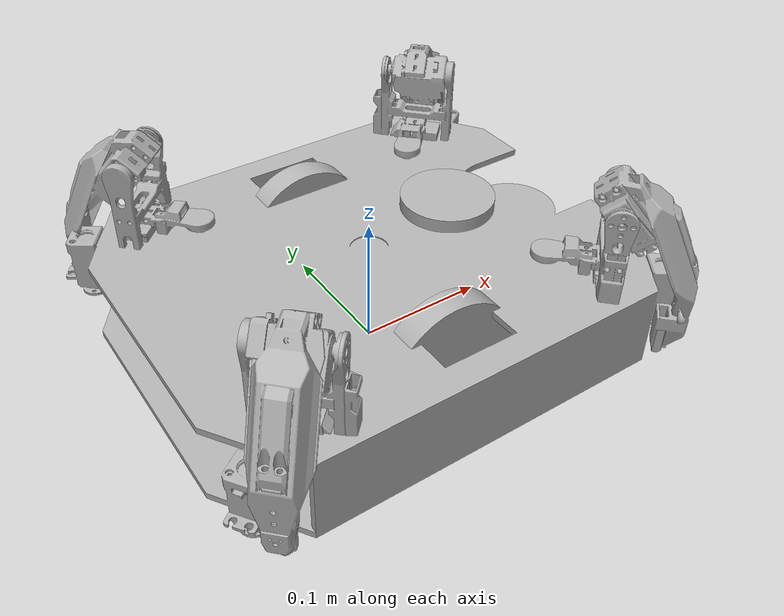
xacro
<?xml version="1.0"?>
<robot xmlns:xacro="http://www.ros.org/wiki/xacro"  name="mp_bot">

    <xacro:arg name="sim_mode" default="true"/>

    <xacro:include filename="mp_bot_links.xacro" />
    <xacro:include filename="mp_bot_joints.xacro" />
    <xacro:include filename="mp_bot.gazebo" />

    <xacro:include filename="ros2_control.xacro"/>

</robot>

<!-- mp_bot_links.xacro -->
<robot name="mp_bot" xmlns:xacro="http://www.ros.org/wiki/xacro">

<xacro:include filename="$(find mp_bot_description)/urdf/materials.xacro" />
<xacro:include filename="consts.xacro" />
<xacro:include filename="inertial_macros.xacro"/>

<link name="base_footprint">
</link>

<link name="base_link">
  <inertial>
    <origin xyz="0.00474561993284678 0.000451302971160743 0.05713204675158248" rpy="0 0 0"/>
    <mass value="1.3993336393164946"/>
    <inertia ixx="0.004167" iyy="0.008114" izz="0.011093" ixy="-2.3e-05" iyz="-1e-06" ixz="-0.000122"/>
  </inertial>
  <visual>
    <origin xyz="0 0 0" rpy="0 0 0"/>
    <geometry>
      <mesh filename="file://$(find mp_bot_description)/meshes/base_link.stl" scale="0.001 0.001 0.001"/>
    </geometry>
    <material name="silver"/>
  </visual>
  <collision>
    <origin xyz="0 0 0" rpy="0 0 0"/>
    <geometry>
      <mesh filename="file://$(find mp_bot_description)/meshes/base_link.stl" scale="0.001 0.001 0.001"/>
    </geometry>
  </collision>
</link>

<link name="lidar_1">
  <inertial>
    <origin xyz="-3.502526686322005e-07 -7.394349676374638e-08 0.004999991334536519" rpy="0 0 0"/>
    <mass value="0.036637253526164155"/>
    <inertia ixx="1.2e-05" iyy="1.2e-05" izz="2.2e-05" ixy="-0.0" iyz="-0.0" ixz="0.0"/>
  </inertial>
  <visual>
    <origin xyz="-0.070405 -0.001718 -0.091239" rpy="0 0 0"/>
    <geometry>
      <mesh filename="file://$(find mp_bot_description)/meshes/lidar_1_1.stl" scale="0.001 0.001 0.001"/>
    </geometry>
    <material name="silver"/>
  </visual>
  <collision>
    <origin xyz="-0.070405 -0.001718 -0.091239" rpy="0 0 0"/>
    <geometry>
      <mesh filename="file://$(find mp_bot_description)/meshes/lidar_1_1.stl" scale="0.001 0.001 0.001"/>
    </geometry>
  </collision>
</link>

<link name="caster_back_1">
  <inertial>
    <origin xyz="4.183074855113045e-07 4.3714413351642447e-07 -0.011527777777777783" rpy="0 0 0"/>
    <mass value="0.12723450247038673"/>
    <inertia ixx="1.3e-05" iyy="1.3e-05" izz="1.3e-05" ixy="-0.0" iyz="0.0" ixz="0.0"/>
  </inertial>
  <visual>
    <origin xyz="0.085732 -0.00046 -0.028" rpy="0 0 0"/>
    <geometry>
      <mesh filename="file://$(find mp_bot_description)/meshes/caster_back_1.stl" scale="0.001 0.001 0.001"/>
    </geometry>
    <material name="silver"/>
  </visual>
  <collision>
    <origin xyz="0.085732 -0.00046 -0.028" rpy="0 0 0"/>
    <geometry>
      <mesh filename="file://$(find mp_bot_description)/meshes/caster_back_1.stl" scale="0.001 0.001 0.001"/>
    </geometry>
  </collision>
</link>

<link name="caster_front_1">
  <inertial>
    <origin xyz="-4.183074797936559e-07 4.371441395560269e-07 -0.011527777777780416" rpy="0 0 0"/>
    <mass value="0.12723450247038653"/>
    <inertia ixx="1.3e-05" iyy="1.3e-05" izz="1.3e-05" ixy="-0.0" iyz="-0.0" ixz="0.0"/>
  </inertial>
  <visual>
    <origin xyz="-0.085732 -0.00046 -0.028" rpy="0 0 0"/>
    <geometry>
      <mesh filename="file://$(find mp_bot_description)/meshes/caster_front_1.stl" scale="0.001 0.001 0.001"/>
    </geometry>
    <material name="silver"/>
  </visual>
  <collision>
    <origin xyz="-0.085732 -0.00046 -0.028" rpy="0 0 0"/>
    <geometry>
      <mesh filename="file://$(find mp_bot_description)/meshes/caster_front_1.stl" scale="0.001 0.001 0.001"/>
    </geometry>
  </collision>
</link>

<link name="left_wheel_1">
  <inertial>
    <origin xyz="-4.371441352808551e-07 0.009999752881842613 4.3021142204224816e-16" rpy="0 0 0"/>
    <mass value="0.14029912967960512"/>
    <inertia ixx="8.9e-05" iyy="0.000168" izz="8.9e-05" ixy="0.0" iyz="0.0" ixz="0.0"/>
  </inertial>
  <visual>
    <origin xyz="0.00046 -0.08385 -0.049" rpy="0 0 0"/>
    <geometry>
      <mesh filename="file://$(find mp_bot_description)/meshes/left_wheel_1_1.stl" scale="0.001 0.001 0.001"/>
    </geometry>
    <material name="silver"/>
  </visual>
  <collision>
    <origin xyz="0.00046 -0.08385 -0.049" rpy="0 0 0"/>
    <geometry>
      <mesh filename="file://$(find mp_bot_description)/meshes/left_wheel_1_1.stl" scale="0.001 0.001 0.001"/>
    </geometry>
  </collision>
</link>

<link name="right_wheel_1">
  <inertial>
    <origin xyz="-4.3714413543096287e-07 -0.009999878593571487 1.5959455978986625e-16" rpy="0 0 0"/>
    <mass value="0.1402991296796053"/>
    <inertia ixx="8.9e-05" iyy="0.000168" izz="8.9e-05" ixy="0.0" iyz="0.0" ixz="0.0"/>
  </inertial>
  <visual>
    <origin xyz="0.00046 0.082929 -0.049" rpy="0 0 0"/>
    <geometry>
      <mesh filename="file://$(find mp_bot_description)/meshes/right_wheel_1_1.stl" scale="0.001 0.001 0.001"/>
    </geometry>
    <material name="silver"/>
  </visual>
  <collision>
    <origin xyz="0.00046 0.082929 -0.049" rpy="0 0 0"/>
    <geometry>
      <mesh filename="file://$(find mp_bot_description)/meshes/right_wheel_1_1.stl" scale="0.001 0.001 0.001"/>
    </geometry>
  </collision>
</link>

<link name="rl_coxa_1">
  <inertial>
    <origin xyz="-0.026996714960131424 0.026268077179343638 0.028198241308351017" rpy="0 0 0"/>
    <mass value="0.04612607101892639"/>
    <inertia ixx="1.9e-05" iyy="1.9e-05" izz="1.4e-05" ixy="2e-06" iyz="1e-06" ixz="-2e-06"/>
  </inertial>
  <visual>
    <origin xyz="0.091978 -0.082887 -0.0409" rpy="0 0 0"/>
    <geometry>
      <mesh filename="file://$(find mp_bot_description)/meshes/rl_coxa_1_1.stl" scale="0.001 0.001 0.001"/>
    </geometry>
    <material name="silver"/>
  </visual>
  <collision>
    <origin xyz="0.091978 -0.082887 -0.0409" rpy="0 0 0"/>
    <geometry>
      <mesh filename="file://$(find mp_bot_description)/meshes/rl_coxa_1_1.stl" scale="0.001 0.001 0.001"/>
    </geometry>
  </collision>
</link>

<link name="rl_femur_1">
  <inertial>
    <origin xyz="-0.018537791249072885 -0.018605177412705676 0.04000428624818345" rpy="0 0 0"/>
    <mass value="0.020845301312193962"/>
    <inertia ixx="2.1e-05" iyy="2.1e-05" izz="1.4e-05" ixy="-6e-06" iyz="0.0" ixz="0.0"/>
  </inertial>
  <visual>
    <origin xyz="0.104487 -0.131882 -0.0594" rpy="0 0 0"/>
    <geometry>
      <mesh filename="file://$(find mp_bot_description)/meshes/rl_femur_1_1.stl" scale="0.001 0.001 0.001"/>
    </geometry>
    <material name="silver"/>
  </visual>
  <collision>
    <origin xyz="0.104487 -0.131882 -0.0594" rpy="0 0 0"/>
    <geometry>
      <mesh filename="file://$(find mp_bot_description)/meshes/rl_femur_1_1.stl" scale="0.001 0.001 0.001"/>
    </geometry>
  </collision>
</link>

<link name="rl_tibia_1">
  <inertial>
    <origin xyz="-0.03231932266314186 -0.004733150335248015 -0.022207890058919558" rpy="0 0 0"/>
    <mass value="0.05880876423892687"/>
    <inertia ixx="7.7e-05" iyy="7.6e-05" izz="3.2e-05" ixy="1e-05" iyz="2.3e-05" ixz="-2.2e-05"/>
  </inertial>
  <visual>
    <origin xyz="0.104486 -0.131883 -0.1394" rpy="0 0 0"/>
    <geometry>
      <mesh filename="file://$(find mp_bot_description)/meshes/rl_tibia_1_1.stl" scale="0.001 0.001 0.001"/>
    </geometry>
    <material name="silver"/>
  </visual>
  <collision>
    <origin xyz="0.104486 -0.131883 -0.1394" rpy="0 0 0"/>
    <geometry>
      <mesh filename="file://$(find mp_bot_description)/meshes/rl_tibia_1_1.stl" scale="0.001 0.001 0.001"/>
    </geometry>
  </collision>
</link>

<link name="rl_sensor_1">
  <inertial>
    <origin xyz="-0.0001512753527032895 0.00014740707198832026 0.005203593667277413" rpy="0 0 0"/>
    <mass value="0.0012341362092424158"/>
    <inertia ixx="0.0" iyy="0.0" izz="0.0" ixy="-0.0" iyz="0.0" ixz="-0.0"/>
  </inertial>
  <visual>
    <origin xyz="0.153315 -0.144225 -0.024368" rpy="0 0 0"/>
    <geometry>
      <mesh filename="file://$(find mp_bot_description)/meshes/rl_sensor_1_1.stl" scale="0.001 0.001 0.001"/>
    </geometry>
    <material name="silver"/>
  </visual>
  <collision>
    <origin xyz="0.153315 -0.144225 -0.024368" rpy="0 0 0"/>
    <geometry>
      <mesh filename="file://$(find mp_bot_description)/meshes/rl_sensor_1_1.stl" scale="0.001 0.001 0.001"/>
    </geometry>
  </collision>
</link>

<link name="rr_coxa_1">
  <inertial>
    <origin xyz="-0.026996715472871163 -0.026268076930194784 0.028198240684364988" rpy="0 0 0"/>
    <mass value="0.04612607279343699"/>
    <inertia ixx="1.9e-05" iyy="1.9e-05" izz="1.4e-05" ixy="-2e-06" iyz="-1e-06" ixz="-2e-06"/>
  </inertial>
  <visual>
    <origin xyz="0.091978 0.082887 -0.0409" rpy="0 0 0"/>
    <geometry>
      <mesh filename="file://$(find mp_bot_description)/meshes/rr_coxa_1_1.stl" scale="0.001 0.001 0.001"/>
    </geometry>
    <material name="silver"/>
  </visual>
  <collision>
    <origin xyz="0.091978 0.082887 -0.0409" rpy="0 0 0"/>
    <geometry>
      <mesh filename="file://$(find mp_bot_description)/meshes/rr_coxa_1_1.stl" scale="0.001 0.001 0.001"/>
    </geometry>
  </collision>
</link>

<link name="rr_femur_1">
  <inertial>
    <origin xyz="-0.018537790161329004 0.018605176192033224 0.04000428711430739" rpy="0 0 0"/>
    <mass value="0.020845299978919977"/>
    <inertia ixx="2.1e-05" iyy="2.1e-05" izz="1.4e-05" ixy="6e-06" iyz="-0.0" ixz="0.0"/>
  </inertial>
  <visual>
    <origin xyz="0.104487 0.131882 -0.0594" rpy="0 0 0"/>
    <geometry>
      <mesh filename="file://$(find mp_bot_description)/meshes/rr_femur_1_1.stl" scale="0.001 0.001 0.001"/>
    </geometry>
    <material name="silver"/>
  </visual>
  <collision>
    <origin xyz="0.104487 0.131882 -0.0594" rpy="0 0 0"/>
    <geometry>
      <mesh filename="file://$(find mp_bot_description)/meshes/rr_femur_1_1.stl" scale="0.001 0.001 0.001"/>
    </geometry>
  </collision>
</link>

<link name="rr_tibia_1">
  <inertial>
    <origin xyz="-0.032319324765416685 0.004733149288344424 -0.02220789054845783" rpy="0 0 0"/>
    <mass value="0.05880877133507192"/>
    <inertia ixx="7.7e-05" iyy="7.6e-05" izz="3.2e-05" ixy="-1e-05" iyz="-2.3e-05" ixz="-2.2e-05"/>
  </inertial>
  <visual>
    <origin xyz="0.104486 0.131883 -0.1394" rpy="0 0 0"/>
    <geometry>
      <mesh filename="file://$(find mp_bot_description)/meshes/rr_tibia_1_1.stl" scale="0.001 0.001 0.001"/>
    </geometry>
    <material name="silver"/>
  </visual>
  <collision>
    <origin xyz="0.104486 0.131883 -0.1394" rpy="0 0 0"/>
    <geometry>
      <mesh filename="file://$(find mp_bot_description)/meshes/rr_tibia_1_1.stl" scale="0.001 0.001 0.001"/>
    </geometry>
  </collision>
</link>

<link name="rr_sensor_1">
  <inertial>
    <origin xyz="-0.00015127535269235381 -0.00014740707199306646 0.00520359366725948" rpy="0 0 0"/>
    <mass value="0.0012341362092425255"/>
    <inertia ixx="0.0" iyy="0.0" izz="0.0" ixy="0.0" iyz="-0.0" ixz="-0.0"/>
  </inertial>
  <visual>
    <origin xyz="0.153315 0.144225 -0.024368" rpy="0 0 0"/>
    <geometry>
      <mesh filename="file://$(find mp_bot_description)/meshes/rr_sensor_1_1.stl" scale="0.001 0.001 0.001"/>
    </geometry>
    <material name="silver"/>
  </visual>
  <collision>
    <origin xyz="0.153315 0.144225 -0.024368" rpy="0 0 0"/>
    <geometry>
      <mesh filename="file://$(find mp_bot_description)/meshes/rr_sensor_1_1.stl" scale="0.001 0.001 0.001"/>
    </geometry>
  </collision>
</link>

<link name="fl_coxa_1">
  <inertial>
    <origin xyz="0.026996715472884708 0.02626807693019481 0.02819824068438439" rpy="0 0 0"/>
    <mass value="0.04612607279343276"/>
    <inertia ixx="1.9e-05" iyy="1.9e-05" izz="1.4e-05" ixy="-2e-06" iyz="1e-06" ixz="2e-06"/>
  </inertial>
  <visual>
    <origin xyz="-0.091978 -0.082887 -0.0409" rpy="0 0 0"/>
    <geometry>
      <mesh filename="file://$(find mp_bot_description)/meshes/fl_coxa_1_1.stl" scale="0.001 0.001 0.001"/>
    </geometry>
    <material name="silver"/>
  </visual>
  <collision>
    <origin xyz="-0.091978 -0.082887 -0.0409" rpy="0 0 0"/>
    <geometry>
      <mesh filename="file://$(find mp_bot_description)/meshes/fl_coxa_1_1.stl" scale="0.001 0.001 0.001"/>
    </geometry>
  </collision>
</link>

<link name="fl_femur_1">
  <inertial>
    <origin xyz="0.01853779016134284 -0.01860517619204438 0.04000428711432268" rpy="0 0 0"/>
    <mass value="0.020845299978917986"/>
    <inertia ixx="2.1e-05" iyy="2.1e-05" izz="1.4e-05" ixy="6e-06" iyz="0.0" ixz="-0.0"/>
  </inertial>
  <visual>
    <origin xyz="-0.104487 -0.131882 -0.0594" rpy="0 0 0"/>
    <geometry>
      <mesh filename="file://$(find mp_bot_description)/meshes/fl_femur_1_1.stl" scale="0.001 0.001 0.001"/>
    </geometry>
    <material name="silver"/>
  </visual>
  <collision>
    <origin xyz="-0.104487 -0.131882 -0.0594" rpy="0 0 0"/>
    <geometry>
      <mesh filename="file://$(find mp_bot_description)/meshes/fl_femur_1_1.stl" scale="0.001 0.001 0.001"/>
    </geometry>
  </collision>
</link>

<link name="fl_tibia_1">
  <inertial>
    <origin xyz="0.03231932471723539 -0.004733149336560577 -0.022207890570597702" rpy="0 0 0"/>
    <mass value="0.05880877133507117"/>
    <inertia ixx="7.7e-05" iyy="7.6e-05" izz="3.2e-05" ixy="-1e-05" iyz="2.3e-05" ixz="2.2e-05"/>
  </inertial>
  <visual>
    <origin xyz="-0.104486 -0.131883 -0.1394" rpy="0 0 0"/>
    <geometry>
      <mesh filename="file://$(find mp_bot_description)/meshes/fl_tibia_1_1.stl" scale="0.001 0.001 0.001"/>
    </geometry>
    <material name="silver"/>
  </visual>
  <collision>
    <origin xyz="-0.104486 -0.131883 -0.1394" rpy="0 0 0"/>
    <geometry>
      <mesh filename="file://$(find mp_bot_description)/meshes/fl_tibia_1_1.stl" scale="0.001 0.001 0.001"/>
    </geometry>
  </collision>
</link>

<link name="fl_sensor_1">
  <inertial>
    <origin xyz="0.00015127535270009762 0.0001474070720010323 0.005203593667284092" rpy="0 0 0"/>
    <mass value="0.001234136209242533"/>
    <inertia ixx="0.0" iyy="0.0" izz="0.0" ixy="0.0" iyz="0.0" ixz="0.0"/>
  </inertial>
  <visual>
    <origin xyz="-0.153315 -0.144225 -0.024368" rpy="0 0 0"/>
    <geometry>
      <mesh filename="file://$(find mp_bot_description)/meshes/fl_sensor_1_1.stl" scale="0.001 0.001 0.001"/>
    </geometry>
    <material name="silver"/>
  </visual>
  <collision>
    <origin xyz="-0.153315 -0.144225 -0.024368" rpy="0 0 0"/>
    <geometry>
      <mesh filename="file://$(find mp_bot_description)/meshes/fl_sensor_1_1.stl" scale="0.001 0.001 0.001"/>
    </geometry>
  </collision>
</link>

<link name="fr_coxa_1">
  <inertial>
    <origin xyz="0.026996714960135407 -0.026268077179344027 0.028198241308342205" rpy="0 0 0"/>
    <mass value="0.0461260710189262"/>
    <inertia ixx="1.9e-05" iyy="1.9e-05" izz="1.4e-05" ixy="2e-06" iyz="-1e-06" ixz="2e-06"/>
  </inertial>
  <visual>
    <origin xyz="-0.091978 0.082887 -0.0409" rpy="0 0 0"/>
    <geometry>
      <mesh filename="file://$(find mp_bot_description)/meshes/fr_coxa_1_1.stl" scale="0.001 0.001 0.001"/>
    </geometry>
    <material name="silver"/>
  </visual>
  <collision>
    <origin xyz="-0.091978 0.082887 -0.0409" rpy="0 0 0"/>
    <geometry>
      <mesh filename="file://$(find mp_bot_description)/meshes/fr_coxa_1_1.stl" scale="0.001 0.001 0.001"/>
    </geometry>
  </collision>
</link>

<link name="fr_femur_1">
  <inertial>
    <origin xyz="0.018537791249076258 0.01860517741270387 0.040004286248166786" rpy="0 0 0"/>
    <mass value="0.02084530131219207"/>
    <inertia ixx="2.1e-05" iyy="2.1e-05" izz="1.4e-05" ixy="-6e-06" iyz="-0.0" ixz="-0.0"/>
  </inertial>
  <visual>
    <origin xyz="-0.104487 0.131882 -0.0594" rpy="0 0 0"/>
    <geometry>
      <mesh filename="file://$(find mp_bot_description)/meshes/fr_femur_1_1.stl" scale="0.001 0.001 0.001"/>
    </geometry>
    <material name="silver"/>
  </visual>
  <collision>
    <origin xyz="-0.104487 0.131882 -0.0594" rpy="0 0 0"/>
    <geometry>
      <mesh filename="file://$(find mp_bot_description)/meshes/fr_femur_1_1.stl" scale="0.001 0.001 0.001"/>
    </geometry>
  </collision>
</link>

<link name="fr_tibia_1">
  <inertial>
    <origin xyz="0.032319322711340914 0.004733150287044713 -0.02220789003677863" rpy="0 0 0"/>
    <mass value="0.05880876423892715"/>
    <inertia ixx="7.7e-05" iyy="7.6e-05" izz="3.2e-05" ixy="1e-05" iyz="-2.3e-05" ixz="2.2e-05"/>
  </inertial>
  <visual>
    <origin xyz="-0.104486 0.131883 -0.1394" rpy="0 0 0"/>
    <geometry>
      <mesh filename="file://$(find mp_bot_description)/meshes/fr_tibia_1_1.stl" scale="0.001 0.001 0.001"/>
    </geometry>
    <material name="silver"/>
  </visual>
  <collision>
    <origin xyz="-0.104486 0.131883 -0.1394" rpy="0 0 0"/>
    <geometry>
      <mesh filename="file://$(find mp_bot_description)/meshes/fr_tibia_1_1.stl" scale="0.001 0.001 0.001"/>
    </geometry>
  </collision>
</link>

<link name="fr_sensor_1">
  <inertial>
    <origin xyz="0.00015127535268613657 -0.00014740707200860959 0.005203593667256815" rpy="0 0 0"/>
    <mass value="0.0012341362092424084"/>
    <inertia ixx="0.0" iyy="0.0" izz="0.0" ixy="-0.0" iyz="-0.0" ixz="0.0"/>
  </inertial>
  <visual>
    <origin xyz="-0.153315 0.144225 -0.024368" rpy="0 0 0"/>
    <geometry>
      <mesh filename="file://$(find mp_bot_description)/meshes/fr_sensor_1_1.stl" scale="0.001 0.001 0.001"/>
    </geometry>
    <material name="silver"/>
  </visual>
  <collision>
    <origin xyz="-0.153315 0.144225 -0.024368" rpy="0 0 0"/>
    <geometry>
      <mesh filename="file://$(find mp_bot_description)/meshes/fr_sensor_1_1.stl" scale="0.001 0.001 0.001"/>
    </geometry>
  </collision>
</link>

</robot>

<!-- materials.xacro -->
<robot name="mp_bot" xmlns:xacro="http://www.ros.org/wiki/xacro" >

<material name="silver">
  <color rgba="0.700 0.700 0.700 1.000"/>
</material>

</robot>

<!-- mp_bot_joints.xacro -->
<robot xmlns:xacro="http://www.ros.org/wiki/xacro">

    <xacro:include filename="consts.xacro" />

    <!-- Joint Limits -->
    <xacro:macro name="bl_to_coxa_limits">
    <limit upper="1.658063" lower="-0.523599" velocity="${velocity}" effort="${effort}"/> <!-- effort = 7 -->
    </xacro:macro>
    <xacro:macro name="coxa_to_femur_limits">
    <limit upper="0.087266" lower="-2.70526" velocity="${velocity}" effort="${effort}"/>
    </xacro:macro>
    <xacro:macro name="femur_to_tibia_limits">
    <limit upper="0.087266" lower="-2.70526" velocity="${velocity}" effort="${effort}"/>
    </xacro:macro>

    <joint name="bf_to_bl" type="fixed">
      <child link="base_footprint"/>
      <parent link="base_link"/>
      <origin xyz="0.0 0.0 0.0" rpy="0.0 0.0 0.0"/>
    </joint>

    <joint name="right_wheel_joint" type="continuous">
        <origin xyz="-0.00046 -0.082929 0.049" rpy="0 0 0"/>
        <parent link="base_link"/>
        <child link="right_wheel_1"/>
        <axis xyz="0.0 1.0 0.0"/>
      </joint>

      <joint name="left_wheel_joint" type="continuous">
        <origin xyz="-0.00046 0.08385 0.049" rpy="0 0 0"/>
        <parent link="base_link"/>
        <child link="left_wheel_1"/>
        <axis xyz="0.0 1.0 0.0"/>
      </joint>

      <joint name="castor_back_joint" type="fixed">
        <origin xyz="-0.085732 0.00046 0.028" rpy="0 0 0"/>
        <parent link="base_link"/>
        <child link="caster_back_1"/>
      </joint>

      <joint name="castor_front_joint" type="fixed">
        <origin xyz="0.085732 0.00046 0.028" rpy="0 0 0"/>
        <parent link="base_link"/>
        <child link="caster_front_1"/>
      </joint>

      <joint name="lidar_joint" type="fixed">
        <origin xyz="0.070405 0.001718 0.091239" rpy="0 0 0"/>
        <parent link="base_link"/>
        <child link="lidar_1"/>
      </joint>

      <joint name="rl_coxa_to_baselink" type="fixed">
  <origin xyz="-0.091978 0.082887 0.0409" rpy="0 0 0"/>
  <parent link="base_link"/>
  <child link="rl_coxa_1"/>
</joint>

<joint name="rl_femur_to_coxa" type="fixed">
  <origin xyz="-0.012509 0.048995 0.0185" rpy="0 0 0"/>
  <parent link="rl_coxa_1"/>
  <child link="rl_femur_1"/>
</joint>

<joint name="rl_tibia_to_femur" type="fixed">
  <origin xyz="1e-06 1e-06 0.08" rpy="0 0 0"/>
  <parent link="rl_femur_1"/>
  <child link="rl_tibia_1"/>
</joint>

<joint name="rl_sensor_to_tibia" type="fixed">
  <origin xyz="-0.048829 0.012342 -0.115032" rpy="0 0 0"/>
  <parent link="rl_tibia_1"/>
  <child link="rl_sensor_1"/>
</joint>

<joint name="rr_coxa_to_baselink" type="fixed">
  <origin xyz="-0.091978 -0.082887 0.0409" rpy="0 0 0"/>
  <parent link="base_link"/>
  <child link="rr_coxa_1"/>
</joint>

<joint name="rr_femur_to_coxa" type="fixed">
  <origin xyz="-0.012509 -0.048995 0.0185" rpy="0 0 0"/>
  <parent link="rr_coxa_1"/>
  <child link="rr_femur_1"/>
</joint>

<joint name="rr_tibia_to_femur" type="fixed">
  <origin xyz="1e-06 -1e-06 0.08" rpy="0 0 0"/>
  <parent link="rr_femur_1"/>
  <child link="rr_tibia_1"/>
</joint>

<joint name="rr_sensor_to_tibia" type="fixed">
  <origin xyz="-0.048829 -0.012342 -0.115032" rpy="0 0 0"/>
  <parent link="rr_tibia_1"/>
  <child link="rr_sensor_1"/>
</joint>

<joint name="fl_coxa_to_baselink" type="fixed">
  <origin xyz="0.091978 0.082887 0.0409" rpy="0 0 0"/>
  <parent link="base_link"/>
  <child link="fl_coxa_1"/>
</joint>

<joint name="fl_femur_to_coxa" type="fixed">
  <origin xyz="0.012509 0.048995 0.0185" rpy="0 0 0"/>
  <parent link="fl_coxa_1"/>
  <child link="fl_femur_1"/>
</joint>

<joint name="fl_tibia_to_femur" type="fixed">
  <origin xyz="-1e-06 1e-06 0.08" rpy="0 0 0"/>
  <parent link="fl_femur_1"/>
  <child link="fl_tibia_1"/>
</joint>

<joint name="fl_sensor_to_tibia" type="fixed">
  <origin xyz="0.048829 0.012342 -0.115032" rpy="0 0 0"/>
  <parent link="fl_tibia_1"/>
  <child link="fl_sensor_1"/>
</joint>

<joint name="fr_coxa_to_baselink" type="fixed">
  <origin xyz="0.091978 -0.082887 0.0409" rpy="0 0 0"/>
  <parent link="base_link"/>
  <child link="fr_coxa_1"/>
</joint>

<joint name="fr_femur_to_coxa" type="fixed">
  <origin xyz="0.012509 -0.048995 0.0185" rpy="0 0 0"/>
  <parent link="fr_coxa_1"/>
  <child link="fr_femur_1"/>
</joint>

<joint name="fr_tibia_to_femur" type="fixed">
  <origin xyz="-1e-06 -1e-06 0.08" rpy="0 0 0"/>
  <parent link="fr_femur_1"/>
  <child link="fr_tibia_1"/>
</joint>

<joint name="fr_sensor_to_tibia" type="fixed">
  <origin xyz="0.048829 -0.012342 -0.115032" rpy="0 0 0"/>
  <parent link="fr_tibia_1"/>
  <child link="fr_sensor_1"/>
</joint>

</robot>
